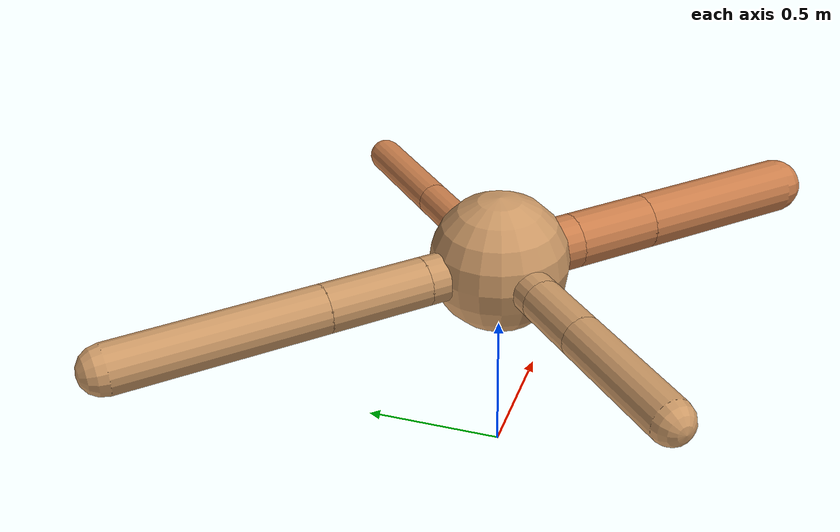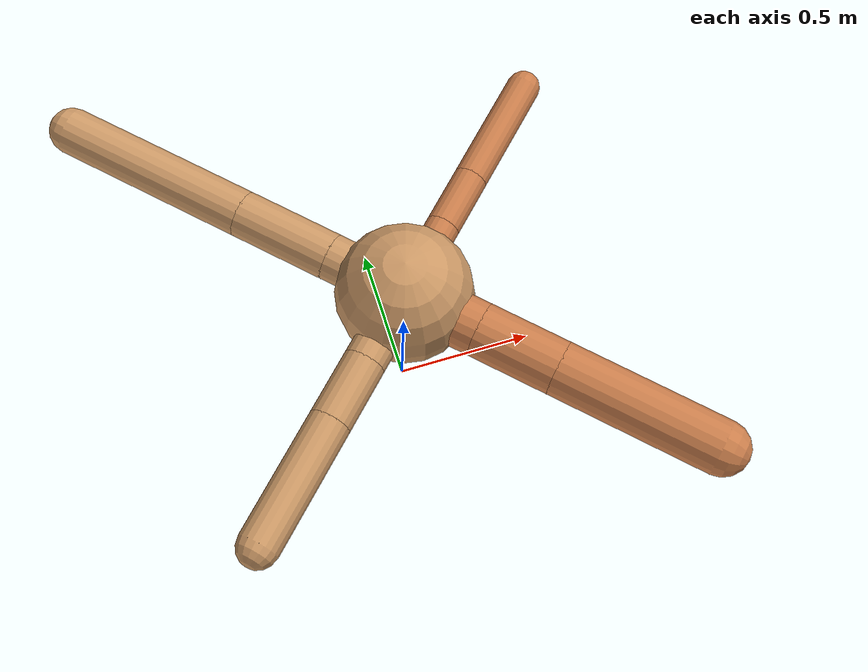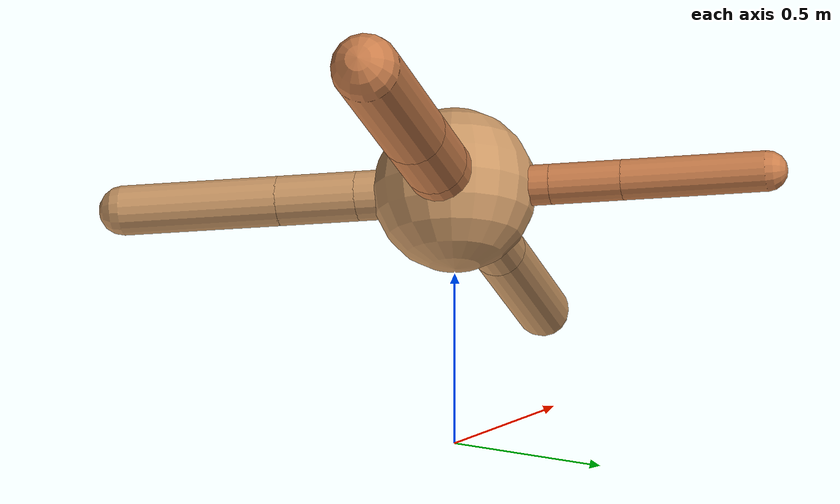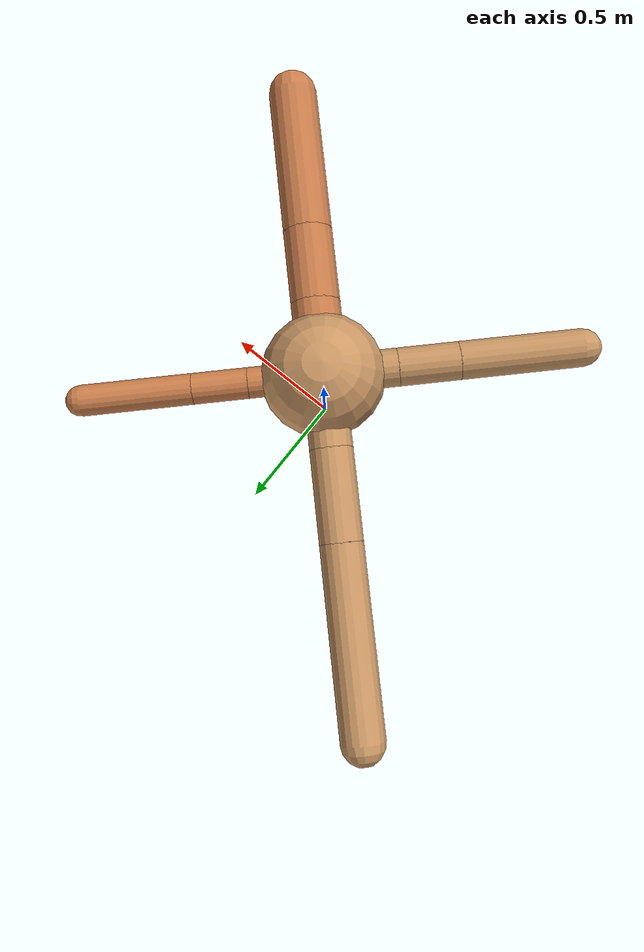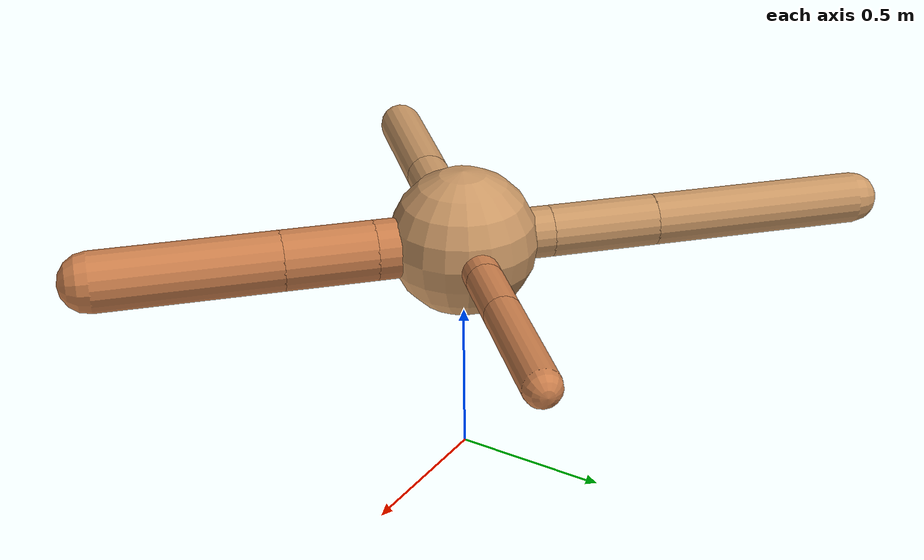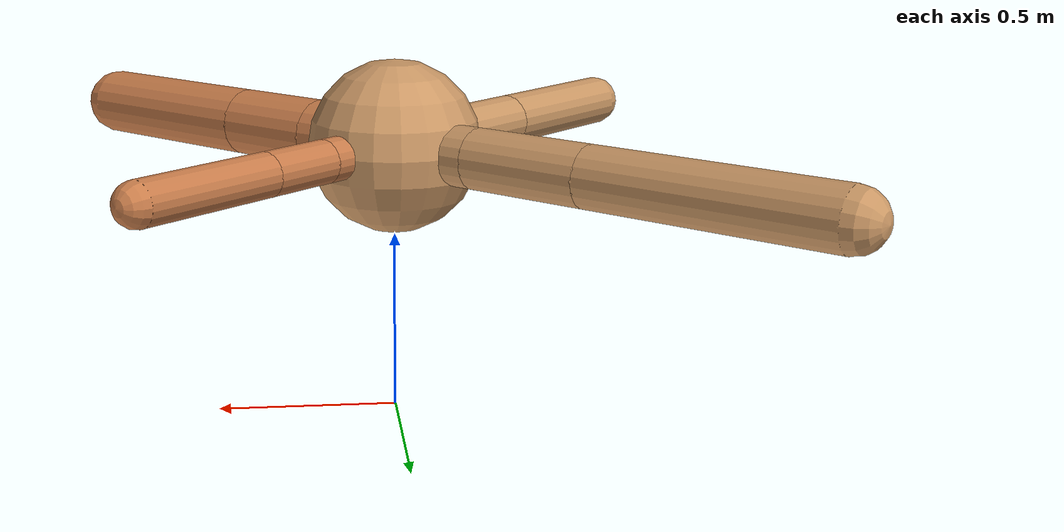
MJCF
<?xml version="1.0" ?>
<mujoco model="ant">

	<compiler angle="degree" coordinate="local" inertiafromgeom="true"/>

	<option integrator="RK4" timestep="0.01"/>

	<custom>

		<numeric data="0.0 0.0 0.55 1.0 0.0 0.0 0.0 0.0 1.0 0.0 -1.0 0.0 -1.0 0.0 1.0" name="init_qpos"/>

	</custom>

	<default>

		<joint armature="1" damping="1" limited="true"/>

		<geom conaffinity="0" condim="3" density="5.0" friction="1.5 0.1 0.1" margin="0.01" rgba="0.8 0.6 0.4 1"/>

	</default>

	<worldbody>

		<body name="torso" pos="0 0 0.75">

			<geom name="torso_geom" pos="0 0 0" size="0.23735358287522915" type="sphere"/>

			<!--joint armature="0" damping="0" limited="false" margin="0.01" name="root" pos="0 0 0" type="free"/-->

			<body name="front_left_leg" pos="0 0 0">

				<geom fromto="0 0 0 0.2 0.2 0" name="aux_1_geom" size="0.059096710897960654" type="capsule" rgba=".8 .5 .3 1"/>

				<body name="aux_1" pos="0.2 0.2 0">

					<joint axis="0 0 1" name="hip_1" pos="0.0 0.0 0.0" range="-40 40" type="hinge"/>

					<geom fromto="0 0 0 0.14770104563468364 0.14770104563468364 0" name="left_leg_geom" size="0.059096710897960654" type="capsule" rgba=".8 .5 .3 1"/>

					<body pos="0.14770104563468364 0.14770104563468364 0" name="front_left_foot">

						<joint axis="-1 1 0" name="ankle_1" pos="0.0 0.0 0.0" range="30 100" type="hinge"/>

						<geom fromto="0 0 0 0.2954020912693673 0.2954020912693673 0" name="left_ankle_geom" size="0.059096710897960654" type="capsule" rgba=".8 .5 .3 1"/>

					</body>

				</body>

			</body>

			<body name="front_right_leg" pos="0 0 0">

				<geom fromto="0 0 0 -0.2 0.2 0" name="aux_2_geom" size="0.08230704074152785" type="capsule"/>

				<body name="aux_2" pos="-0.2 0.2 0">

					<joint axis="0 0 1" name="hip_2" pos="0.0 0.0 0.0" range="-40 40" type="hinge"/>

					<geom fromto="0 0 0 -0.24529810719583023 0.24529810719583023 0" name="right_leg_geom" size="0.08230704074152785" type="capsule"/>

					<body pos="-0.24529810719583023 0.24529810719583023 0" name="front_right_foot">

						<joint axis="1 1 0" name="ankle_2" pos="0.0 0.0 0.0" range="-100 -30" type="hinge"/>

						<geom fromto="0 0 0 -0.49059621439166046 0.49059621439166046 0" name="right_ankle_geom" size="0.08230704074152785" type="capsule"/>

					</body>

				</body>

			</body>

			<body name="left_back_leg" pos="0 0 0">

				<geom fromto="0 0 0 -0.2 -0.2 0" name="aux_3_geom" size="0.07315568697266178" type="capsule"/>

				<body name="aux_3" pos="-0.2 -0.2 0">

					<joint axis="0 0 1" name="hip_3" pos="0.0 0.0 0.0" range="-40 40" type="hinge"/>

					<geom fromto="0 0 0 -0.16546773425011174 -0.16546773425011174 0" name="back_leg_geom" size="0.07315568697266178" type="capsule"/>

					<body pos="-0.16546773425011174 -0.16546773425011174 0" name="left_back_foot">

						<joint axis="-1 1 0" name="ankle_3" pos="0.0 0.0 0.0" range="-100 -30" type="hinge"/>

						<geom fromto="0 0 0 -0.3309354685002235 -0.3309354685002235 0" name="third_ankle_geom" size="0.07315568697266178" type="capsule"/>

					</body>

				</body>

			</body>

			<body name="right_back_leg" pos="0 0 0">

				<geom fromto="0 0 0 0.2 -0.2 0" name="aux_4_geom" size="0.0955004490777708" type="capsule" rgba=".8 .5 .3 1"/>

				<body name="aux_4" pos="0.2 -0.2 0">

					<joint axis="0 0 1" name="hip_4" pos="0.0 0.0 0.0" range="-40 40" type="hinge"/>

					<geom fromto="0 0 0 0.20564412903226695 -0.20564412903226695 0" name="rightback_leg_geom" size="0.0955004490777708" type="capsule" rgba=".8 .5 .3 1"/>

					<body pos="0.20564412903226695 -0.20564412903226695 0" name="right_back_foot">

						<joint axis="1 1 0" name="ankle_4" pos="0.0 0.0 0.0" range="30 100" type="hinge"/>

						<geom fromto="0 0 0 0.4112882580645339 -0.4112882580645339 0" name="fourth_ankle_geom" size="0.0955004490777708" type="capsule" rgba=".8 .5 .3 1"/>

					</body>

				</body>

			</body>

		</body>

	</worldbody>

	<actuator>

		<motor ctrllimited="true" ctrlrange="-1.0 1.0" joint="hip_4" gear="150"/>

		<motor ctrllimited="true" ctrlrange="-1.0 1.0" joint="ankle_4" gear="150"/>

		<motor ctrllimited="true" ctrlrange="-1.0 1.0" joint="hip_1" gear="150"/>

		<motor ctrllimited="true" ctrlrange="-1.0 1.0" joint="ankle_1" gear="150"/>

		<motor ctrllimited="true" ctrlrange="-1.0 1.0" joint="hip_2" gear="150"/>

		<motor ctrllimited="true" ctrlrange="-1.0 1.0" joint="ankle_2" gear="150"/>

		<motor ctrllimited="true" ctrlrange="-1.0 1.0" joint="hip_3" gear="150"/>

		<motor ctrllimited="true" ctrlrange="-1.0 1.0" joint="ankle_3" gear="150"/>

	</actuator>

</mujoco>
